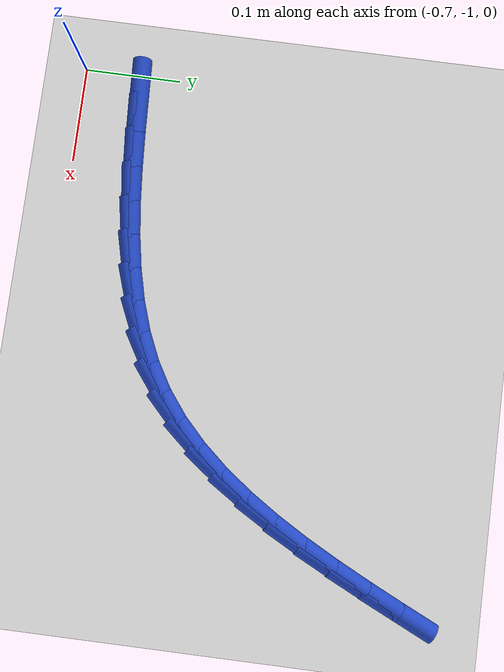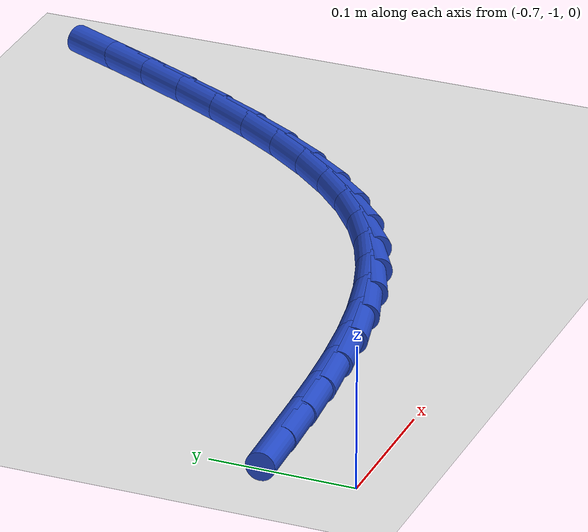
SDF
<sdf version="1.6">
 <world name="default">
  <model name="ground_plane">
   <static>1</static>
   <link name="link">
    <collision name="collision">
     <geometry><plane><normal>0 0 1</normal><size>100 100</size></plane></geometry>
     <surface><friction><ode><mu>100</mu><mu2>50</mu2></ode></friction></surface>
    </collision>
    <visual name="visual">
     <cast_shadows>0</cast_shadows>
     <geometry><plane><normal>0 0 1</normal><size>100 100</size></plane></geometry>
     <material>
      <script><uri>file://media/materials/scripts/gazebo.material</uri><name>Gazebo/WhiteGlow</name></script>
     </material>
    </visual>
   </link>
  </model>
  <model name="line">
   <link name="link_194">
    <pose>-0.6734329590968786 -0.9384855642763527 0.01 0 1.57 0.04698248631400843</pose>
    <collision name="collision">
     <geometry><cylinder><radius>0.01</radius><length>0.08</length></cylinder></geometry>
    </collision>
    <visual name="visual">
     <material>
      <script><name>Gazebo/Blue</name><uri>file://media/materials/scripts/gazebo.material</uri></script>
     </material>
     <geometry><cylinder><radius>0.01</radius><length>0.08</length></cylinder></geometry>
    </visual>
   </link>
   <link name="link_195">
    <pose>-0.6358981074313391 -0.9367207849329622 0.01 0 1.57 0.062491007710165365</pose>
    <collision name="collision">
     <geometry><cylinder><radius>0.01</radius><length>0.08</length></cylinder></geometry>
    </collision>
    <visual name="visual">
     <material>
      <script><name>Gazebo/Blue</name><uri>file://media/materials/scripts/gazebo.material</uri></script>
     </material>
     <geometry><cylinder><radius>0.01</radius><length>0.08</length></cylinder></geometry>
    </visual>
   </link>
   <link name="link_196">
    <pose>-0.598878777022843 -0.9344043936190046 0.01 0 1.57 0.08876158976331572</pose>
    <collision name="collision">
     <geometry><cylinder><radius>0.01</radius><length>0.08</length></cylinder></geometry>
    </collision>
    <visual name="visual">
     <material>
      <script><name>Gazebo/Blue</name><uri>file://media/materials/scripts/gazebo.material</uri></script>
     </material>
     <geometry><cylinder><radius>0.01</radius><length>0.08</length></cylinder></geometry>
    </visual>
   </link>
   <link name="link_197">
    <pose>-0.5625711127324331 -0.9311731773139283 0.01 0 1.57 0.1266982724513498</pose>
    <collision name="collision">
     <geometry><cylinder><radius>0.01</radius><length>0.08</length></cylinder></geometry>
    </collision>
    <visual name="visual">
     <material>
      <script><name>Gazebo/Blue</name><uri>file://media/materials/scripts/gazebo.material</uri></script>
     </material>
     <geometry><cylinder><radius>0.01</radius><length>0.08</length></cylinder></geometry>
    </visual>
   </link>
   <link name="link_198">
    <pose>-0.5271712594211558 -0.9266639229971821 0.01 0 1.57 0.17745016219156354</pose>
    <collision name="collision">
     <geometry><cylinder><radius>0.01</radius><length>0.08</length></cylinder></geometry>
    </collision>
    <visual name="visual">
     <material>
      <script><name>Gazebo/Blue</name><uri>file://media/materials/scripts/gazebo.material</uri></script>
     </material>
     <geometry><cylinder><radius>0.01</radius><length>0.08</length></cylinder></geometry>
    </visual>
   </link>
   <link name="link_199">
    <pose>-0.49287536195005416 -0.9205134176482146 0.01 0 1.57 0.24229617984971033</pose>
    <collision name="collision">
     <geometry><cylinder><radius>0.01</radius><length>0.08</length></cylinder></geometry>
    </collision>
    <visual name="visual">
     <material>
      <script><name>Gazebo/Blue</name><uri>file://media/materials/scripts/gazebo.material</uri></script>
     </material>
     <geometry><cylinder><radius>0.01</radius><length>0.08</length></cylinder></geometry>
    </visual>
   </link>
   <link name="link_200">
    <pose>-0.45987956518017237 -0.9123584482464746 0.01 0 1.57 0.3224017385644595</pose>
    <collision name="collision">
     <geometry><cylinder><radius>0.01</radius><length>0.08</length></cylinder></geometry>
    </collision>
    <visual name="visual">
     <material>
      <script><name>Gazebo/Blue</name><uri>file://media/materials/scripts/gazebo.material</uri></script>
     </material>
     <geometry><cylinder><radius>0.01</radius><length>0.08</length></cylinder></geometry>
    </visual>
   </link>
   <link name="link_201">
    <pose>-0.428380013972554 -0.9018358017714105 0.01 0 1.57 0.4183898743239894</pose>
    <collision name="collision">
     <geometry><cylinder><radius>0.01</radius><length>0.08</length></cylinder></geometry>
    </collision>
    <visual name="visual">
     <material>
      <script><name>Gazebo/Blue</name><uri>file://media/materials/scripts/gazebo.material</uri></script>
     </material>
     <geometry><cylinder><radius>0.01</radius><length>0.08</length></cylinder></geometry>
    </visual>
   </link>
   <link name="link_202">
    <pose>-0.39857285318824454 -0.8885822652024712 0.01 0 1.57 0.5297237653916458</pose>
    <collision name="collision">
     <geometry><cylinder><radius>0.01</radius><length>0.08</length></cylinder></geometry>
    </collision>
    <visual name="visual">
     <material>
      <script><name>Gazebo/Blue</name><uri>file://media/materials/scripts/gazebo.material</uri></script>
     </material>
     <geometry><cylinder><radius>0.01</radius><length>0.08</length></cylinder></geometry>
    </visual>
   </link>
   <link name="link_203">
    <pose>-0.3706542276882875 -0.8722346255191054 0.01 0 1.57 0.6499903263119833</pose>
    <collision name="collision">
     <geometry><cylinder><radius>0.01</radius><length>0.08</length></cylinder></geometry>
    </collision>
    <visual name="visual">
     <material>
      <script><name>Gazebo/Blue</name><uri>file://media/materials/scripts/gazebo.material</uri></script>
     </material>
     <geometry><cylinder><radius>0.01</radius><length>0.08</length></cylinder></geometry>
    </visual>
   </link>
   <link name="link_204">
    <pose>-0.34475631503356813 -0.8525473136990364 0.01 0 1.57 0.7593967206691248</pose>
    <collision name="collision">
     <geometry><cylinder><radius>0.01</radius><length>0.08</length></cylinder></geometry>
    </collision>
    <visual name="visual">
     <material>
      <script><name>Gazebo/Blue</name><uri>file://media/materials/scripts/gazebo.material</uri></script>
     </material>
     <geometry><cylinder><radius>0.01</radius><length>0.08</length></cylinder></geometry>
    </visual>
   </link>
   <link name="link_205">
    <pose>-0.32074902642312497 -0.8297571019059403 0.01 0 1.57 0.8525697418303135</pose>
    <collision name="collision">
     <geometry><cylinder><radius>0.01</radius><length>0.08</length></cylinder></geometry>
    </collision>
    <visual name="visual">
     <material>
      <script><name>Gazebo/Blue</name><uri>file://media/materials/scripts/gazebo.material</uri></script>
     </material>
     <geometry><cylinder><radius>0.01</radius><length>0.08</length></cylinder></geometry>
    </visual>
   </link>
   <link name="link_206">
    <pose>-0.2984350673925412 -0.8042243620636174 0.01 0 1.57 0.9300117857795098</pose>
    <collision name="collision">
     <geometry><cylinder><radius>0.01</radius><length>0.08</length></cylinder></geometry>
    </collision>
    <visual name="visual">
     <material>
      <script><name>Gazebo/Blue</name><uri>file://media/materials/scripts/gazebo.material</uri></script>
     </material>
     <geometry><cylinder><radius>0.01</radius><length>0.08</length></cylinder></geometry>
    </visual>
   </link>
   <link name="link_207">
    <pose>-0.2776171434408343 -0.7763094661631228 0.01 0 1.57 0.9930054449941742</pose>
    <collision name="collision">
     <geometry><cylinder><radius>0.01</radius><length>0.08</length></cylinder></geometry>
    </collision>
    <visual name="visual">
     <material>
      <script><name>Gazebo/Blue</name><uri>file://media/materials/scripts/gazebo.material</uri></script>
     </material>
     <geometry><cylinder><radius>0.01</radius><length>0.08</length></cylinder></geometry>
    </visual>
   </link>
   <link name="link_208">
    <pose>-0.2580979600670195 -0.7463727861955096 0.01 0 1.57 1.0430639297426458</pose>
    <collision name="collision">
     <geometry><cylinder><radius>0.01</radius><length>0.08</length></cylinder></geometry>
    </collision>
    <visual name="visual">
     <material>
      <script><name>Gazebo/Blue</name><uri>file://media/materials/scripts/gazebo.material</uri></script>
     </material>
     <geometry><cylinder><radius>0.01</radius><length>0.08</length></cylinder></geometry>
    </visual>
   </link>
   <link name="link_209">
    <pose>-0.23968022277011317 -0.7147746941518325 0.01 0 1.57 1.0816112140244039</pose>
    <collision name="collision">
     <geometry><cylinder><radius>0.01</radius><length>0.08</length></cylinder></geometry>
    </collision>
    <visual name="visual">
     <material>
      <script><name>Gazebo/Blue</name><uri>file://media/materials/scripts/gazebo.material</uri></script>
     </material>
     <geometry><cylinder><radius>0.01</radius><length>0.08</length></cylinder></geometry>
    </visual>
   </link>
   <link name="link_210">
    <pose>-0.22216663704913067 -0.6818755620231441 0.01 0 1.57 1.1098277593797223</pose>
    <collision name="collision">
     <geometry><cylinder><radius>0.01</radius><length>0.08</length></cylinder></geometry>
    </collision>
    <visual name="visual">
     <material>
      <script><name>Gazebo/Blue</name><uri>file://media/materials/scripts/gazebo.material</uri></script>
     </material>
     <geometry><cylinder><radius>0.01</radius><length>0.08</length></cylinder></geometry>
    </visual>
   </link>
   <link name="link_211">
    <pose>-0.20535990840308932 -0.6480357618005005 0.01 0 1.57 1.1285903552324665</pose>
    <collision name="collision">
     <geometry><cylinder><radius>0.01</radius><length>0.08</length></cylinder></geometry>
    </collision>
    <visual name="visual">
     <material>
      <script><name>Gazebo/Blue</name><uri>file://media/materials/scripts/gazebo.material</uri></script>
     </material>
     <geometry><cylinder><radius>0.01</radius><length>0.08</length></cylinder></geometry>
    </visual>
   </link>
   <link name="link_212">
    <pose>-0.18906274233100456 -0.6136156654749544 0.01 0 1.57 1.1384552789012796</pose>
    <collision name="collision">
     <geometry><cylinder><radius>0.01</radius><length>0.08</length></cylinder></geometry>
    </collision>
    <visual name="visual">
     <material>
      <script><name>Gazebo/Blue</name><uri>file://media/materials/scripts/gazebo.material</uri></script>
     </material>
     <geometry><cylinder><radius>0.01</radius><length>0.08</length></cylinder></geometry>
    </visual>
   </link>
  </model>
 </world>
</sdf>
